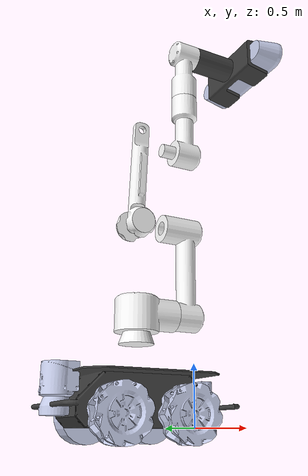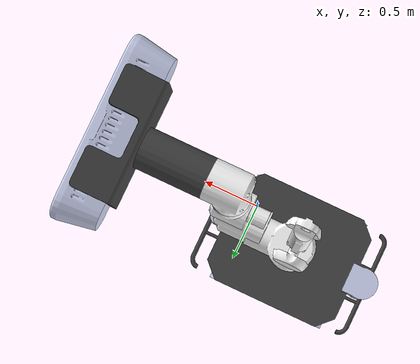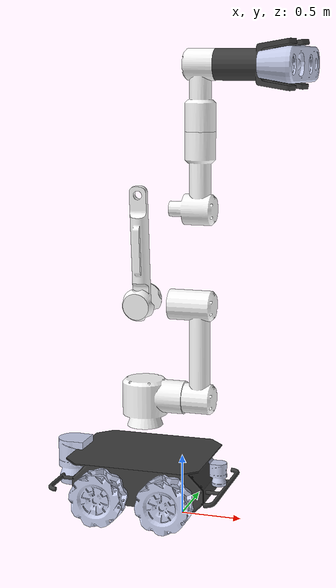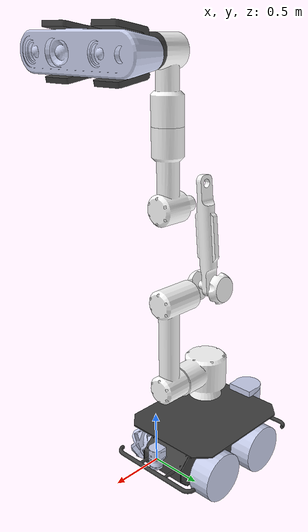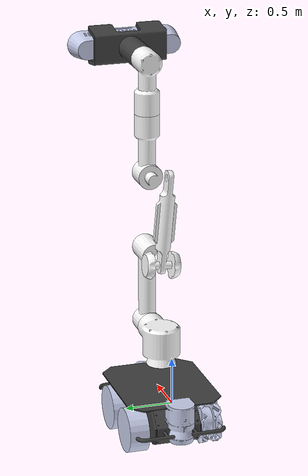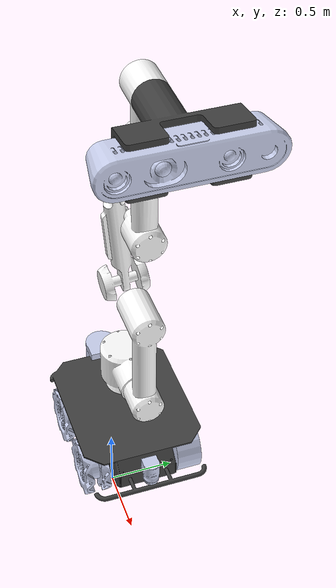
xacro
<?xml version="1.0"?>
<robot
  name="aircraft_inspection_robot" xmlns:xacro="http://ros.org/wiki/xacro">

  <link name="dummy_link"></link>

  <link
    name="base_link">
    <inertial>
      <origin
        xyz="-0.40974645535857 0.24834344494391 0.242010590101945"
        rpy="0 0 0" />
      <mass
        value="352.3239752391313" />
      <inertia
        ixx="0.952539519630922"
        ixy="-4.26200364814785E-05"
        ixz="5.36575380324012E-05"
        iyy="30.80199276879049"
        iyz="2.4370448304257E-05"
        izz="40.07464899613958" />
    </inertial>
    <visual>
      <origin
        xyz="0 0 0"
        rpy="0 0 0" />
      <geometry>
        <mesh
          filename="package://aircraft_inspection_robot/meshes/base_link.STL" />
      </geometry>
      <material
        name="">
        <color
          rgba="0.250980392156863 0.250980392156863 0.250980392156863 1" />
      </material>
    </visual>
    <collision>
      <origin
        xyz="0 0 0"
        rpy="0 0 0" />
      <geometry>
        <mesh
          filename="package://aircraft_inspection_robot/meshes/base_link.STL" />
      </geometry>
    </collision>
  </link>

  <joint name="dummy_joint" type="fixed">
    <origin rpy="0 0 0" xyz="0 0 0" />
    <parent link="dummy_link"/>
    <child link="base_link"/>
  </joint>

  <link
    name="front_lidar_link">
    <inertial>
      <origin
        xyz="-0.00725496120108809 -0.159524101399661 -5.98196165102483E-08"
        rpy="0 0 0" />
      <mass
        value="2.62716823876827" />
      <inertia
        ixx="0.0112696941818608"
        ixy="-0.00033780129369249"
        ixz="1.4993857049244E-09"
        iyy="0.00584101301427301"
        iyz="-7.42930015937879E-09"
        izz="0.0112957202364551" />
    </inertial>
    <visual>
      <origin
        xyz="0 0 0"
        rpy="0 0 0" />
      <geometry>
        <mesh
          filename="package://aircraft_inspection_robot/meshes/front_lidar_link.STL" />
      </geometry>
      <material
        name="">
        <color
          rgba="0.792156862745098 0.819607843137255 0.933333333333333 1" />
      </material>
    </visual>
    <collision>
      <origin
        xyz="0 0 0"
        rpy="0 0 0" />
      <geometry>
        <mesh
          filename="package://aircraft_inspection_robot/meshes/front_lidar_link.STL" />
      </geometry>
    </collision>
  </link>
  <joint
    name="front_lidar_joint"
    type="fixed">
    <origin
      xyz="0.252189298222892 0.248326110601867 0.129347762825463"
      rpy="-1.57091123434865 0 0" />
    <parent
      link="base_link" />
    <child
      link="front_lidar_link" />
    <axis
      xyz="0 0 0" />
  </joint>
  <link
    name="rear_lidar_link">
    <inertial>
      <origin
        xyz="-0.00725495907227769 -0.159524101502578 -5.98195511736233E-08"
        rpy="0 0 0" />
      <mass
        value="2.62716823908889" />
      <inertia
        ixx="0.0112696941918823"
        ixy="-0.000337801221774006"
        ixz="1.49990162575632E-09"
        iyy="0.00584101300629532"
        iyz="-7.42946478333022E-09"
        izz="0.0112957202365325" />
    </inertial>
    <visual>
      <origin
        xyz="0 0 0"
        rpy="0 0 0" />
      <geometry>
        <mesh
          filename="package://aircraft_inspection_robot/meshes/rear_lidar_link.STL" />
      </geometry>
      <material
        name="">
        <color
          rgba="0.792156862745098 0.819607843137255 0.933333333333333 1" />
      </material>
    </visual>
    <collision>
      <origin
        xyz="0 0 0"
        rpy="0 0 0" />
      <geometry>
        <mesh
          filename="package://aircraft_inspection_robot/meshes/rear_lidar_link.STL" />
      </geometry>
    </collision>
  </link>
  <joint
    name="rear_lidar_joint"
    type="fixed">
    <origin
      xyz="-1.07167463581468 0.248325943235427 0.129347754093208"
      rpy="-1.57068141924114 0 3.14159265358979" />
    <parent
      link="base_link" />
    <child
      link="rear_lidar_link" />
    <axis
      xyz="0 0 0" />
  </joint>
  <link
    name="front_right_wheel_link">
    <inertial>
      <origin
        xyz="7.69611511519663E-07 -1.70468712881733E-07 0.102621158507274"
        rpy="0 0 0" />
      <mass
        value="26.0461976105726" />
      <inertia
        ixx="0.285954065616882"
        ixy="7.95282541629767E-07"
        ixz="1.27020782265502E-07"
        iyy="0.28595474175216"
        iyz="-3.78487432157488E-07"
        izz="0.40415282922357" />
    </inertial>
    <visual>
      <origin
        xyz="0 0 0"
        rpy="0 0 0" />
      <geometry>
        <mesh
          filename="package://aircraft_inspection_robot/meshes/front_right_wheel_link.STL" />
      </geometry>
      <material
        name="">
        <color
          rgba="0.792156862745098 0.819607843137255 0.933333333333333 1" />
      </material>
    </visual>
    <collision>
      <origin
        xyz="0 0 0"
        rpy="0 0 0" />
      <geometry>
        <cylinder radius="0.2281" length="0.2032"/>
      </geometry>
    </collision>
  </link>
  <joint
    name="front_right_wheel_joint"
    type="continuous">
    <origin
      xyz="-0.117597527933808 -0.0373680425515616 0.10160911911045"
      rpy="-1.57068160265985 -0.0571716575997457 3.14159265358979" />
    <parent
      link="base_link" />
    <child
      link="front_right_wheel_link" />
    <axis
      xyz="0 0 1" />
  </joint>
  <link
    name="front_left_wheel_link">
    <inertial>
      <origin
        xyz="1.06668829737838E-07 -1.81805510673927E-07 -0.102621158507274"
        rpy="0 0 0" />
      <mass
        value="26.0463242126014" />
      <inertia
        ixx="0.285954618303477"
        ixy="7.68759858498613E-07"
        ixz="6.28786224972317E-07"
        iyy="0.285955290913927"
        iyz="3.7011482934088E-07"
        izz="0.404153186322765" />
    </inertial>
    <visual>
      <origin
        xyz="0 0 0"
        rpy="0 0 0" />
      <geometry>
        <cylinder radius="0.2281" length="0.2032"/>
      </geometry>
      <material
        name="">
        <color
          rgba="0.792156862745098 0.819607843137255 0.933333333333333 1" />
      </material>
    </visual>
    <collision>
      <origin
        xyz="0 0 0"
        rpy="0 0 0" />
      <geometry>
        <cylinder radius="0.2281" length="0.2032"/>
      </geometry>
    </collision>
  </link>
  <joint
    name="front_left_wheel_joint"
    type="continuous">
    <origin
      xyz="-0.117597527933808 0.63 0.10160911911045"
      rpy="1.57056878031369 -1.04143176730992 0.000196477434083904" />
    <parent
      link="base_link" />
    <child
      link="front_left_wheel_link" />
    <axis
      xyz="0 0 1" />
  </joint>
  <link
    name="back_right_wheel_link">
    <inertial>
      <origin
        xyz="8.41577684762562E-08 -1.68242609732694E-07 0.102641039115083"
        rpy="0 0 0" />
      <mass
        value="26.0462008072991" />
      <inertia
        ixx="0.285954040177974"
        ixy="7.90067012358279E-07"
        ixz="-6.50671063736261E-07"
        iyy="0.285954742544619"
        iyz="-3.69738156013685E-07"
        izz="0.40415280236699" />
    </inertial>
    <visual>
      <origin
        xyz="0 0 0"
        rpy="0 0 0" />
      <geometry>
        <mesh
          filename="package://aircraft_inspection_robot/meshes/back_right_wheel_link.STL" />
      </geometry>
      <material
        name="">
        <color
          rgba="0.792156862745098 0.819607843137255 0.933333333333333 1" />
      </material>
    </visual>
    <collision>
      <origin
        xyz="0 0 0"
        rpy="0 0 0" />
      <geometry>
        <cylinder radius="0.2281" length="0.2032"/>
      </geometry>
    </collision>
  </link>
  <joint
    name="back_right_wheel_joint"
    type="continuous">
    <origin
      xyz="-0.701797527935311 -0.0373482051170577 0.101609112969085"
      rpy="1.57064724689163 -0.690734458596981 9.50549862212618E-05" />
    <parent
      link="base_link" />
    <child
      link="back_right_wheel_link" />
    <axis
      xyz="0 0 1" />
  </joint>
  <link
    name="back_left_wheel_link">
    <inertial>
      <origin
        xyz="1.29034836829356E-07 -2.66555836092586E-06 -0.102621158507274"
        rpy="0 0 0" />
      <mass
        value="26.0463122941313" />
      <inertia
        ixx="0.285954575528675"
        ixy="7.71478869336928E-07"
        ixz="6.45837128179966E-07"
        iyy="0.285955250948586"
        iyz="7.90647100387111E-07"
        izz="0.404153156835058" />
    </inertial>
    <visual>
      <origin
        xyz="0 0 0"
        rpy="0 0 0" />
      <geometry>
        <cylinder radius="0.2281" length="0.2032"/>
      </geometry>
      <material
        name="">
        <color
          rgba="0.792156862745098 0.819607843137255 0.933333333333333 1" />
      </material>
    </visual>
    <collision>
      <origin
        xyz="0 0 0"
        rpy="0 0 0" />
      <geometry>
        <cylinder radius="0.2281" length="0.2032"/>
      </geometry>
    </collision>
  </link>
  <joint
    name="back_left_wheel_joint"
    type="continuous">
    <origin
      xyz="-0.701797527935311 0.63 0.101609112969085"
      rpy="1.56727528936655 -1.5381898923507 0.00352290998991109" />
    <parent
      link="base_link" />
    <child
      link="back_left_wheel_link" />
    <axis
      xyz="0 0 1" />
  </joint>
  <link
    name="arm_base_link">
    <inertial>
      <origin
        xyz="-1.64295967997052E-07 0.231013183516839 0.049503043395059"
        rpy="0 0 0" />
      <mass
        value="4.94633477448353" />
      <inertia
        ixx="1.41939380135235"
        ixy="-8.90881223634171E-07"
        ixz="9.56220690256119E-07"
        iyy="1.27036787158441"
        iyz="-0.0880230019550541"
        izz="0.931256676518883" />
    </inertial>
    <visual>
      <origin
        xyz="0 0 0"
        rpy="0 0 0" />
      <geometry>
        <mesh
          filename="package://aircraft_inspection_robot/meshes/arm_base_link.STL" />
      </geometry>
      <material
        name="">
        <color
          rgba="1 1 1 1" />
      </material>
    </visual>
    <collision>
      <origin
        xyz="0 0 0"
        rpy="0 0 0" />
      <geometry>
        <mesh
          filename="package://aircraft_inspection_robot/meshes/arm_base_link.STL" />
      </geometry>
    </collision>
  </link>
  <joint
    name="arm_base_joint"
    type="continuous">
    <origin
      xyz="-0.409742672306299 0.248387046108564 0.660376290839812"
      rpy="1.57079632680359 0.000114907553872355 1.57079640245869" />
    <parent
      link="base_link" />
    <child
      link="arm_base_link" />
    <axis
      xyz="0 1 0" />
  </joint>
  <link
    name="arm_link_1">
    <inertial>
      <origin
        xyz="-0.0372792279944005 0.426695142555641 -0.479484473911662"
        rpy="0 0 0" />
      <mass
        value="4.5531535202482" />
      <inertia
        ixx="5.83147761609791"
        ixy="0.464362340696364"
        ixz="0.0181479436428272"
        iyy="0.557025555450064"
        iyz="-0.207714622846255"
        izz="5.66378782226248" />
    </inertial>
    <visual>
      <origin
        xyz="0 0 0"
        rpy="0 0 0" />
      <geometry>
        <mesh
          filename="package://aircraft_inspection_robot/meshes/arm_link_1.STL" />
      </geometry>
      <material
        name="">
        <color
          rgba="1 1 1 1" />
      </material>
    </visual>
    <collision>
      <origin
        xyz="0 0 0"
        rpy="0 0 0" />
      <geometry>
        <mesh
          filename="package://aircraft_inspection_robot/meshes/arm_link_1.STL" />
      </geometry>
    </collision>
  </link>
  <joint
    name="arm_link_1_joint"
    type="continuous">
    <origin
      xyz="0 0.266699994442256 -0.0254000017630377"
      rpy="-3.14159264700432 0 -3.05444635463409" />
    <parent
      link="arm_base_link" />
    <child
      link="arm_link_1" />
    <axis
      xyz="0 0 -1" />
  </joint>
  <link
    name="arm_link_2">
    <inertial>
      <origin
        xyz="-0.0372794216662831 -0.426695125634995 0.155515526088335"
        rpy="0 0 0" />
      <mass
        value="4.55315352024768" />
      <inertia
        ixx="5.83147818820347"
        ixy="-0.464359091558048"
        ixz="0.0181471140196324"
        iyy="0.557024983344353"
        iyz="0.207714695328513"
        izz="5.66378782226227" />
    </inertial>
    <visual>
      <origin
        xyz="0 0 0"
        rpy="0 0 0" />
      <geometry>
        <mesh
          filename="package://aircraft_inspection_robot/meshes/arm_link_2.STL" />
      </geometry>
      <material
        name="">
        <color
          rgba="1 1 1 1" />
      </material>
    </visual>
    <collision>
      <origin
        xyz="0 0 0"
        rpy="0 0 0" />
      <geometry>
        <mesh
          filename="package://aircraft_inspection_robot/meshes/arm_link_2.STL" />
      </geometry>
    </collision>
  </link>
  <joint
    name="arm_link_2_joint"
    type="continuous">
    <origin
      xyz="-0.069638 0.79706 0"
      rpy="-3.1416 0 0" />
    <parent
      link="arm_link_1" />
    <child
      link="arm_link_2" />
    <axis
      xyz="0 0 -1" />
  </joint>
  <link
    name="arm_link_3">
    <inertial>
      <origin
        xyz="-0.0196317798013794 -0.224705189100464 0.497191005211974"
        rpy="0 0 0" />
      <mass
        value="3.17053240308613" />
      <inertia
        ixx="1.87953235728557"
        ixy="-0.138313038122859"
        ixz="0.00672807661397747"
        iyy="0.308500360870789"
        iyz="0.0770053740505552"
        izz="1.82187288938407" />
    </inertial>
    <visual>
      <origin
        xyz="0 0 0"
        rpy="0 0 0" />
      <geometry>
        <mesh
          filename="package://aircraft_inspection_robot/meshes/arm_link_3.STL" />
      </geometry>
      <material
        name="">
        <color
          rgba="1 1 1 1" />
      </material>
    </visual>
    <collision>
      <origin
        xyz="0 0 0"
        rpy="0 0 0" />
      <geometry>
        <mesh
          filename="package://aircraft_inspection_robot/meshes/arm_link_3.STL" />
      </geometry>
    </collision>
  </link>
  <joint
    name="arm_link_3_joint"
    type="continuous">
    <origin
      xyz="-0.069638 -0.79706 0"
      rpy="0 0 0" />
    <parent
      link="arm_link_2" />
    <child
      link="arm_link_3" />
    <axis
      xyz="0 0 1" />
  </joint>
  <link
    name="arm_link_4">
    <inertial>
      <origin
        xyz="-0.00225991388917834 -9.44354448390028E-07 -0.686443635379313"
        rpy="0 0 0" />
      <mass
        value="2.91827459543752" />
      <inertia
        ixx="1.43479094583571"
        ixy="-6.99548069272076E-09"
        ixz="-0.0156260344498578"
        iyy="1.44213765403444"
        iyz="-7.5715520551036E-08"
        izz="0.224051315592854" />
    </inertial>
    <visual>
      <origin
        xyz="0 0 0"
        rpy="0 0 0" />
      <geometry>
        <mesh
          filename="package://aircraft_inspection_robot/meshes/arm_link_4.STL" />
      </geometry>
      <material
        name="">
        <color
          rgba="1 1 1 1" />
      </material>
    </visual>
    <collision>
      <origin
        xyz="0 0 0"
        rpy="0 0 0" />
      <geometry>
        <mesh
          filename="package://aircraft_inspection_robot/meshes/arm_link_4.STL" />
      </geometry>
    </collision>
  </link>
  <joint
    name="arm_link_4_joint"
    type="continuous">
    <origin
      xyz="-0.021323 -0.24407 0.508"
      rpy="-3.0713 -1.5708 1.4134" />
    <parent
      link="arm_link_3" />
    <child
      link="arm_link_4" />
    <axis
      xyz="0 0 -1" />
  </joint>
  <link
    name="arm_link_5">
    <inertial>
      <origin
        xyz="6.43929354282591E-15 -4.44089209850063E-16 0.583424416047374"
        rpy="0 0 0" />
      <mass
        value="4.1227054564651" />
      <inertia
        ixx="1.92995623100548"
        ixy="0.0650573018555175"
        ixz="-2.96700504282669E-14"
        iyy="2.66891181079381"
        iyz="4.23062739418566E-16"
        izz="1.53738026195758" />
    </inertial>
    <visual>
      <origin
        xyz="0 0 0"
        rpy="0 0 0" />
      <geometry>
        <mesh
          filename="package://aircraft_inspection_robot/meshes/arm_link_5.STL" />
      </geometry>
      <material
        name="">
        <color
          rgba="0.250980392156863 0.250980392156863 0.250980392156863 1" />
      </material>
    </visual>
    <collision>
      <origin
        xyz="0 0 0"
        rpy="0 0 0" />
      <geometry>
        <mesh
          filename="package://aircraft_inspection_robot/meshes/arm_link_5.STL" />
      </geometry>
    </collision>
  </link>
  <joint
    name="arm_link_5_joint"
    type="continuous">
    <origin
      xyz="-0.127 0 -0.9234"
      rpy="1.5708 -0.087146 1.5708" />
    <parent
      link="arm_link_4" />
    <child
      link="arm_link_5" />
    <axis
      xyz="0 0 1" />
  </joint>
  <link
    name="camera_link">
    <inertial>
      <origin
        xyz="1.2060623173473 0.138272316836035 -0.00419630171526747"
        rpy="0 0 0" />
      <mass
        value="6.76402187018761" />
      <inertia
        ixx="7.05925773573284"
        ixy="0.00160005295963165"
        ixz="0.0222511113797514"
        iyy="7.10657034997836"
        iyz="0.000413253450750154"
        izz="0.724964091144847" />
    </inertial>
    <visual>
      <origin
        xyz="0 0 0"
        rpy="0 0 0" />
      <geometry>
        <mesh
          filename="package://aircraft_inspection_robot/meshes/camera_link.STL" />
      </geometry>
      <material
        name="">
        <color
          rgba="0.792156862745098 0.819607843137255 0.933333333333333 1" />
      </material>
    </visual>
    <collision>
      <origin
        xyz="0 0 0"
        rpy="0 0 0" />
      <geometry>
        <mesh
          filename="package://aircraft_inspection_robot/meshes/camera_link.STL" />
      </geometry>
    </collision>
  </link>
  <joint
    name="camera_link_joint"
    type="fixed">
    <origin
      xyz="0.0121589249497853 0.139169858407754 -0.3556"
      rpy="3.05444641868214 -1.57079625379441 0" />
    <parent
      link="arm_link_5" />
    <child
      link="camera_link" />
    <axis
      xyz="0 1 0" />
  </joint>

  <!-- ROS Gazebo controls -->
  <ros2_control name="GazeboSystem" type="system">
    <hardware>
        <plugin>gazebo_ros2_control/GazeboSystem</plugin>
    </hardware>

    <!-- Velocity controllers -->

    <!-- Front Wheels -->
    <joint name="front_right_wheel_joint">
        <command_interface name="velocity">
            <param name="min">-1000.0</param>
            <param name="max">1000.0</param>
        </command_interface>
        <state_interface name="position"/>
        <state_interface name="velocity"/>
    </joint>

    <joint name="front_left_wheel_joint">
        <command_interface name="velocity">
            <param name="min">-1000.0</param>
            <param name="max">1000.0</param>
        </command_interface>
        <state_interface name="position"/>
        <state_interface name="velocity"/>
    </joint>

    <joint name="back_right_wheel_joint">
        <command_interface name="velocity">
            <param name="min">-1000.0</param>
            <param name="max">1000.0</param>
        </command_interface>
        <state_interface name="position"/>
        <state_interface name="velocity"/>
    </joint>

    <joint name="back_left_wheel_joint">
        <command_interface name="velocity">
            <param name="min">-1000.0</param>
            <param name="max">1000.0</param>
        </command_interface>
        <state_interface name="position"/>
        <state_interface name="velocity"/>
    </joint>

    <!-- Position Controllers -->
    <joint name="arm_base_joint">
        <command_interface name="position">
            <param name="min">-3.1415</param>
            <param name="max">3.1415</param>
        </command_interface>
        <state_interface name="position"/>
        <state_interface name="velocity"/>
    </joint>

    <joint name="arm_link_1_joint">
        <command_interface name="position">
            <param name="min">-1.57</param>
            <param name="max">1.57</param>
        </command_interface>
        <state_interface name="position"/>
        <state_interface name="velocity"/>
    </joint>

    <joint name="arm_link_2_joint">
        <command_interface name="position">
            <param name="min">-1.57</param>
            <param name="max">1.57</param>
        </command_interface>
        <state_interface name="position"/>
        <state_interface name="velocity"/>
    </joint>

    <joint name="arm_link_3_joint">
        <command_interface name="position">
            <param name="min">-1.57</param>
            <param name="max">1.57</param>
        </command_interface>
        <state_interface name="position"/>
        <state_interface name="velocity"/>
    </joint>

    <joint name="arm_link_4_joint">
        <command_interface name="position">
            <param name="min">-1.57</param>
            <param name="max">1.57</param>
        </command_interface>
        <state_interface name="position"/>
        <state_interface name="velocity"/>
    </joint>

    <joint name="arm_link_5_joint">
        <command_interface name="position">
            <param name="min">-3.1415</param>
            <param name="max">3.1415</param>
        </command_interface>
        <state_interface name="position"/>
        <state_interface name="velocity"/>
    </joint>

  </ros2_control>

  <!-- Sensors -->

  <!-- Front LiDAR -->
  <link name="front_lidar_sensor_link"></link>
  <joint name="front_lidar_sensor_joint" type="fixed">
    <origin rpy="1.571 1.571 0" xyz="0 -0.1 0" />
    <parent link="front_lidar_link"/>
    <child link="front_lidar_sensor_link"/>
  </joint>
  <gazebo reference="front_lidar_sensor_link">
    <sensor name="front_lidar" type="ray">
      <pose>0.0 0.0 0.0 0 0 0</pose>
      <always_on>true</always_on>
      <visualize>false</visualize>
      <update_rate>5</update_rate>
      <ray>
        <scan>
          <horizontal>
            <samples>360</samples>
            <resolution>1.00000</resolution>
            <min_angle>-0.2</min_angle>
            <max_angle>3.2</max_angle>
          </horizontal>
        </scan>
        <range>
          <min>0.4</min>
          <max>20.0</max>
          <resolution>0.015000</resolution>
        </range>
        <noise>
          <type>gaussian</type>
          <mean>0.0</mean>
          <stddev>0.01</stddev>
        </noise>
      </ray>
      <plugin name="front_scan" filename="libgazebo_ros_ray_sensor.so">
        <ros>
          <remapping>~/out:=front_scan</remapping>
        </ros>
        <output_type>sensor_msgs/LaserScan</output_type>
        <frame_name>front_lidar_sensor_link</frame_name>
      </plugin>
    </sensor>
  </gazebo>

  <!-- Rear LiDAR -->
  <link name="rear_lidar_sensor_link"></link>
  <joint name="rear_lidar_sensor_joint" type="fixed">
    <origin rpy="1.571 1.571 0" xyz="0.0 -0.1 0" />
    <parent link="rear_lidar_link"/>
    <child link="rear_lidar_sensor_link"/>
  </joint>
  <gazebo reference="rear_lidar_sensor_link">
    <sensor name="rear_lidar" type="ray">
      <pose>0.0 0.0 0.0 0 0 0</pose>
      <always_on>true</always_on>
      <visualize>false</visualize>
      <update_rate>5</update_rate>
      <ray>
        <scan>
          <horizontal>
            <samples>360</samples>
            <resolution>1.00000</resolution>
            <min_angle>-0.2</min_angle>
            <max_angle>3.4</max_angle>
          </horizontal>
        </scan>
        <range>
          <min>0.4</min>
          <max>20.0</max>
          <resolution>0.015000</resolution>
        </range>
        <noise>
          <type>gaussian</type>
          <mean>0.0</mean>
          <stddev>0.01</stddev>
        </noise>
      </ray>
      <plugin name="rear_scan" filename="libgazebo_ros_ray_sensor.so">
        <ros>
          <remapping>~/out:=rear_scan</remapping>
        </ros>
        <output_type>sensor_msgs/LaserScan</output_type>
        <frame_name>rear_lidar_sensor_link</frame_name>
      </plugin>
    </sensor>
  </gazebo>

  <!-- Depth Camera -->
  <link name="depth_camera_sensor_link"></link>
  <joint name="depth_camera_sensor_joint" type="fixed">
    <origin rpy="-1.571 0 0" xyz="1.3 0 0" />
    <parent link="camera_link"/>
    <child link="depth_camera_sensor_link"/>
  </joint>
  <gazebo reference="depth_camera_sensor_link">
    <sensor name="depth_camera" type="depth">
      <camera name="depth_camera">
        <!-- Camera properties -->
        <horizontal_fov>1.047</horizontal_fov>
        <vertical_fov>0.785</vertical_fov>
        <image>
          <width>640</width>
          <height>480</height>
        </image>
        <clip>
          <near>0.1</near>
          <far>20.0</far>
        </clip>
      </camera>

      <!-- Depth camera Gazebo plugin -->
      <plugin name="gazebo_ros_depth_camera" filename="libgazebo_ros_camera.so">
        <alwaysOn>true</alwaysOn>
        <updateRate>30.0</updateRate>
        <cameraName>depth</cameraName>
        <frameName>depth_camera_sensor_link</frameName>
        <imageTopicName>image_raw</imageTopicName>
        <cameraInfoTopicName>camera_info</cameraInfoTopicName>
      </plugin>
    </sensor>
  </gazebo>

  <gazebo>
    <plugin filename="libgazebo_ros2_control.so" name="gazebo_ros2_control">
        <parameters>$(find aircraft_inspection_robot)/config/control.yaml</parameters>
    </plugin>
  </gazebo>

</robot>
